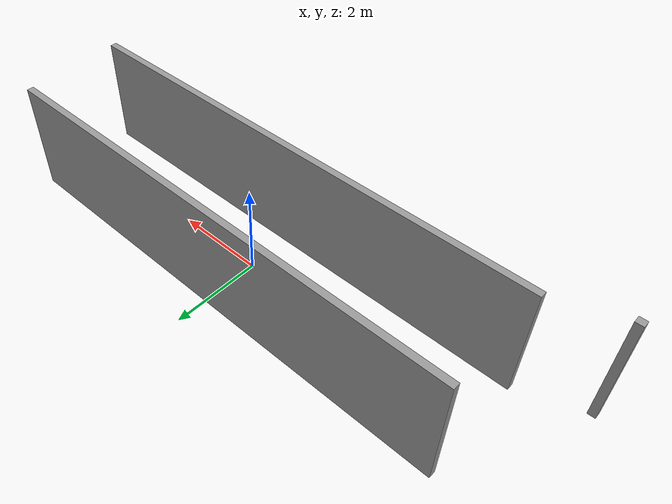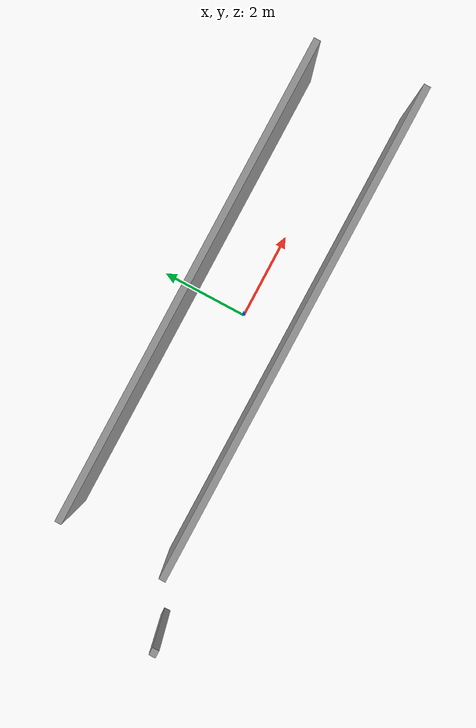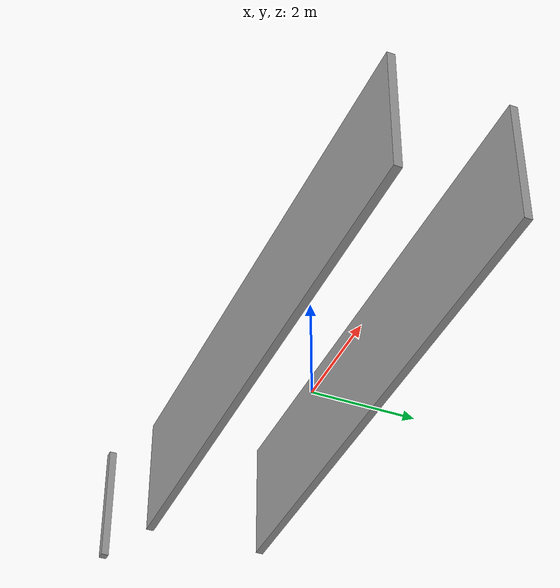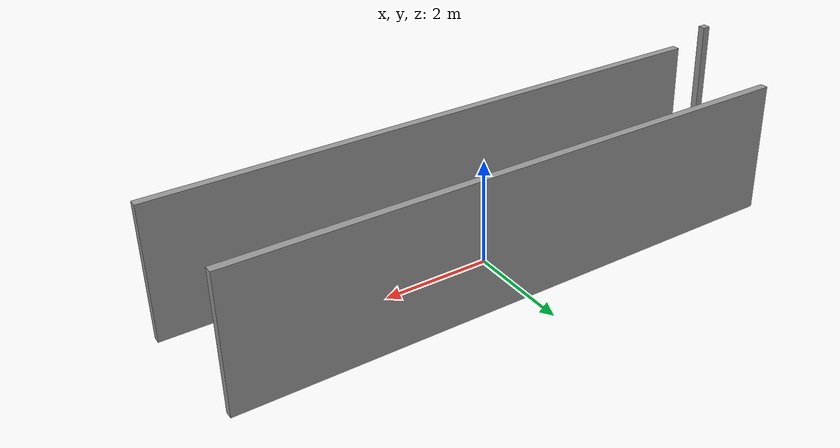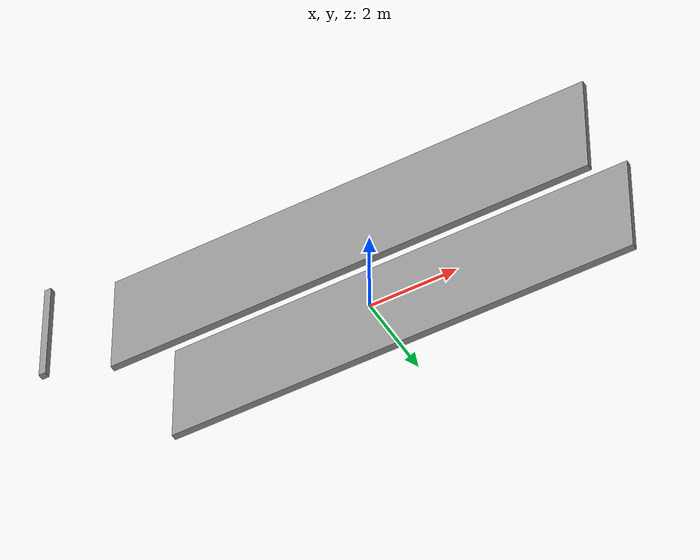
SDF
<?xml version='1.0'?>
<sdf version='1.6'>
  <model name='korytarz'>
    <pose frame=''>-0.625 -0.19 0 0 -0 0</pose>
    <link name='Wall_1'>
      <collision name='Wall_1_Collision'>
        <geometry>
          <box>
            <size>0.16 0.15 2.5</size>
          </box>
        </geometry>
        <pose frame=''>0 0 1.25 0 -0 0</pose>
      </collision>
      <visual name='Wall_1_Visual'>
        <pose frame=''>0 0 1.25 0 -0 0</pose>
        <geometry>
          <box>
            <size>0.16 0.15 2.5</size>
          </box>
        </geometry>
        <material>
          <script>
            <uri>file://media/materials/scripts/gazebo.material</uri>
            <name>Gazebo/Grey</name>
          </script>
          <ambient>0 0 0 1</ambient>
        </material>
        <meta>
          <layer>0</layer>
        </meta>
      </visual>
      <pose frame=''>-6.12 -1.43 0 0 -0 0</pose>
    </link>
    <link name='Wall_12'>
      <collision name='Wall_12_Collision'>
        <geometry>
          <box>
            <size>10.75 0.15 2.5</size>
          </box>
        </geometry>
        <pose frame=''>0 0 1.25 0 -0 0</pose>
      </collision>
      <visual name='Wall_12_Visual'>
        <pose frame=''>0 0 1.25 0 -0 0</pose>
        <geometry>
          <box>
            <size>10.75 0.15 2.5</size>
          </box>
        </geometry>
        <material>
          <script>
            <uri>file://media/materials/scripts/gazebo.material</uri>
            <name>Gazebo/Grey</name>
          </script>
          <ambient>1 1 1 1</ambient>
        </material>
        <meta>
          <layer>0</layer>
        </meta>
      </visual>
      <pose frame=''>0.605 1.43 0 0 -0 0</pose>
    </link>
    <link name='Wall_18'>
      <collision name='Wall_18_Collision'>
        <geometry>
          <box>
            <size>11 0.15 2.5</size>
          </box>
        </geometry>
        <pose frame=''>0 0 1.25 0 -0 0</pose>
      </collision>
      <visual name='Wall_18_Visual'>
        <pose frame=''>0 0 1.25 0 -0 0</pose>
        <geometry>
          <box>
            <size>11 0.15 2.5</size>
          </box>
        </geometry>
        <material>
          <script>
            <uri>file://media/materials/scripts/gazebo.material</uri>
            <name>Gazebo/Grey</name>
          </script>
          <ambient>1 1 1 1</ambient>
        </material>
        <meta>
          <layer>0</layer>
        </meta>
      </visual>
      <pose frame=''>0.7 -0.9 0 0 -0 0</pose>
    </link>
    <static>1</static>
  </model>
</sdf>
